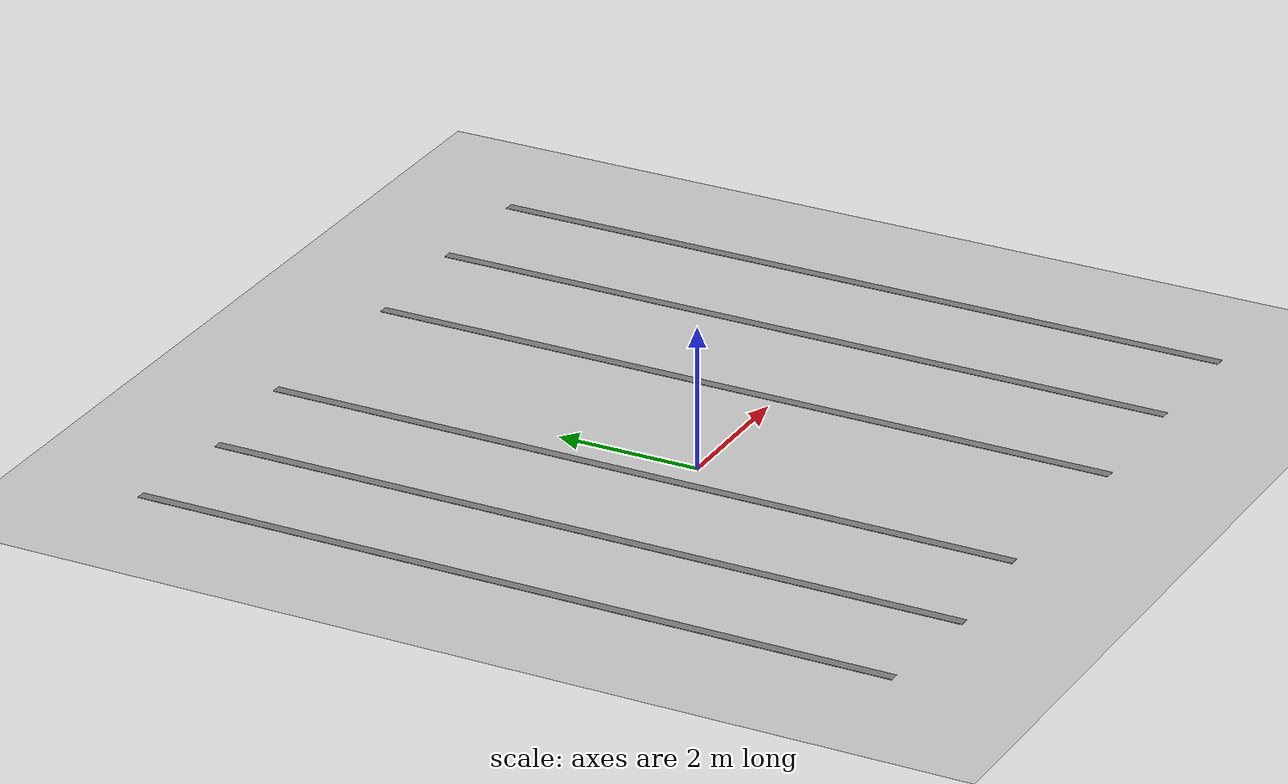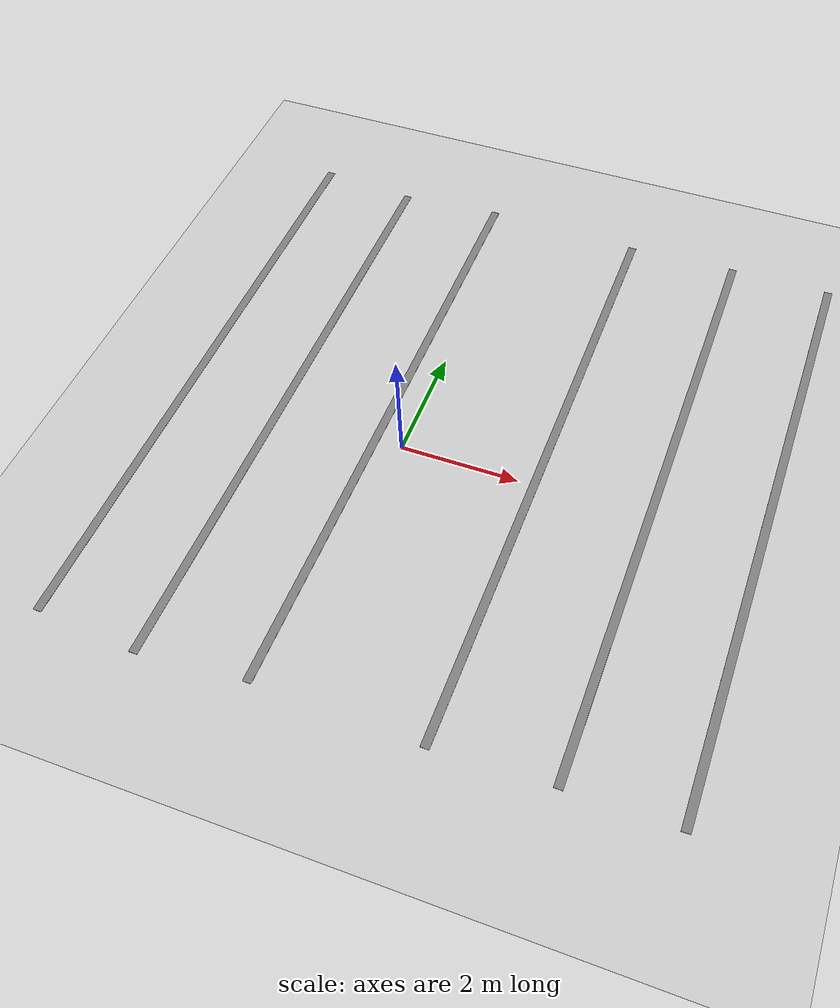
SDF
<?xml version="1.0" ?>
<sdf version="1.11">

  <world name="sizzling_hillar_world">

    <physics name="bullet" type="bullet">
      <max_step_size>0.001</max_step_size>
      <real_time_factor>1</real_time_factor>
      <real_time_update_rate>1000</real_time_update_rate>
    </physics>

    <plugin
      name="gz::sim::systems::Physics"
      filename="gz-sim-physics-system"/>

    <plugin
      name="gz::sim::systems::Sensors"
      filename="gz-sim-sensors-system">
      <render_engine>ogre2</render_engine>
    </plugin>

    <plugin
      name="gz::sim::systems::SceneBroadcaster"
      filename="gz-sim-scene-broadcaster-system"/>

    <plugin
      name="gz::sim::systems::UserCommands"
      filename="gz-sim-user-commands-system"/>

    <gravity>0 0 -9.8</gravity>

    <magnetic_field>
      5.5645e-06 2.28758e-05 -4.23884e-05
    </magnetic_field>

    <atmosphere type="adiabatic"/>

    <scene>
      <ambient>0.4 0.4 0.4 1</ambient>
      <background>0.7 0.7 0.7 1</background>
      <shadows>true</shadows>
    </scene>

    <light type="directional" name="sun">
      <cast_shadows>true</cast_shadows>

      <pose>0 0 10 0 0 0</pose>

      <diffuse>0.8 0.8 0.8 1</diffuse>
      <specular>0.2 0.2 0.2 1</specular>

      <attenuation>
        <range>1000</range>
        <constant>0.9</constant>
        <linear>0.01</linear>
        <quadratic>0.001</quadratic>
      </attenuation>

      <direction>-0.5 0.1 -0.9</direction>
    </light>

    <!-- Plano del suelo -->
    <model name="ground_plane">
      <static>true</static>

      <link name="link">

        <collision name="collision">
          <geometry>
            <plane>
              <normal>0 0 1</normal>
              <size>100 100</size>
            </plane>
          </geometry>
        </collision>

        <visual name="visual">
          <geometry>
            <plane>
              <normal>0 0 1</normal>
              <size>100 100</size>
            </plane>
          </geometry>

          <material>
            <ambient>0.8 0.8 0.8 1</ambient>
            <diffuse>0.8 0.8 0.8 1</diffuse>
            <specular>0.8 0.8 0.8 1</specular>
          </material>
        </visual>

      </link>
    </model>

    <!-- Pista cargada desde el archivo STL -->
    <model name="sizzling_hillar">

      <static>true</static>

      <!-- Posición y orientación de la pista -->
      <pose>0.375 0 0 0 0 3.1416</pose>

      <link name="link">

        <collision name="collision">
          <geometry>
            <mesh>
              <uri>file:///home/lenovo/mrad_ws_2602_hotel/src/hotel_gazebo/worlds/carretera1.stl</uri>
              <scale>0.07 0.07 0.07</scale>
            </mesh>
          </geometry>
        </collision>

        <visual name="visual">

          <geometry>
            <mesh>
              <uri>file:///home/lenovo/mrad_ws_2602_hotel/src/hotel_gazebo/worlds/carretera1.stl</uri>
              <scale>0.07 0.07 0.07</scale>
            </mesh>
          </geometry>

          <material>
            <ambient>0.2 0.2 0.2 1</ambient>
            <diffuse>0.5 0.5 0.5 1</diffuse>
            <specular>0.8 0.8 0.8 1</specular>
          </material>

        </visual>

      </link>
    </model>

  </world>

</sdf>
